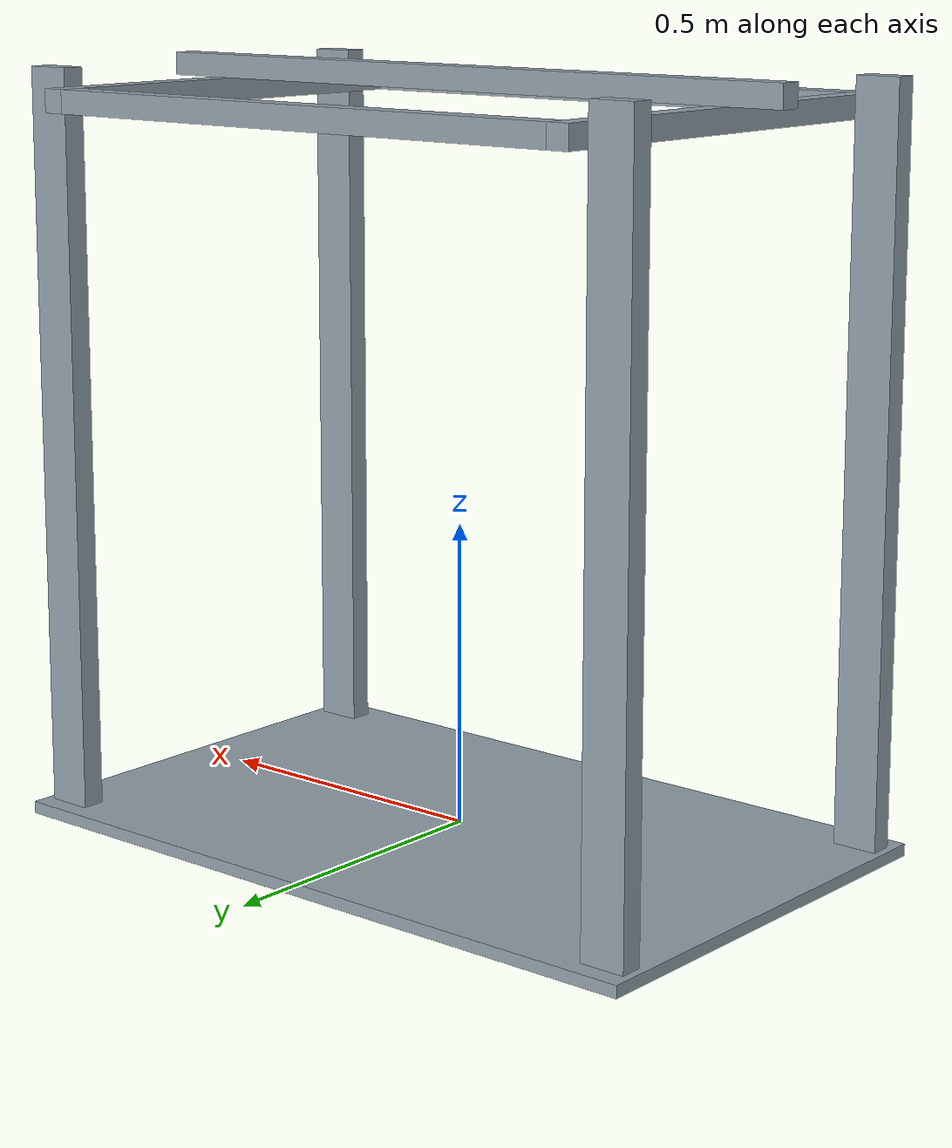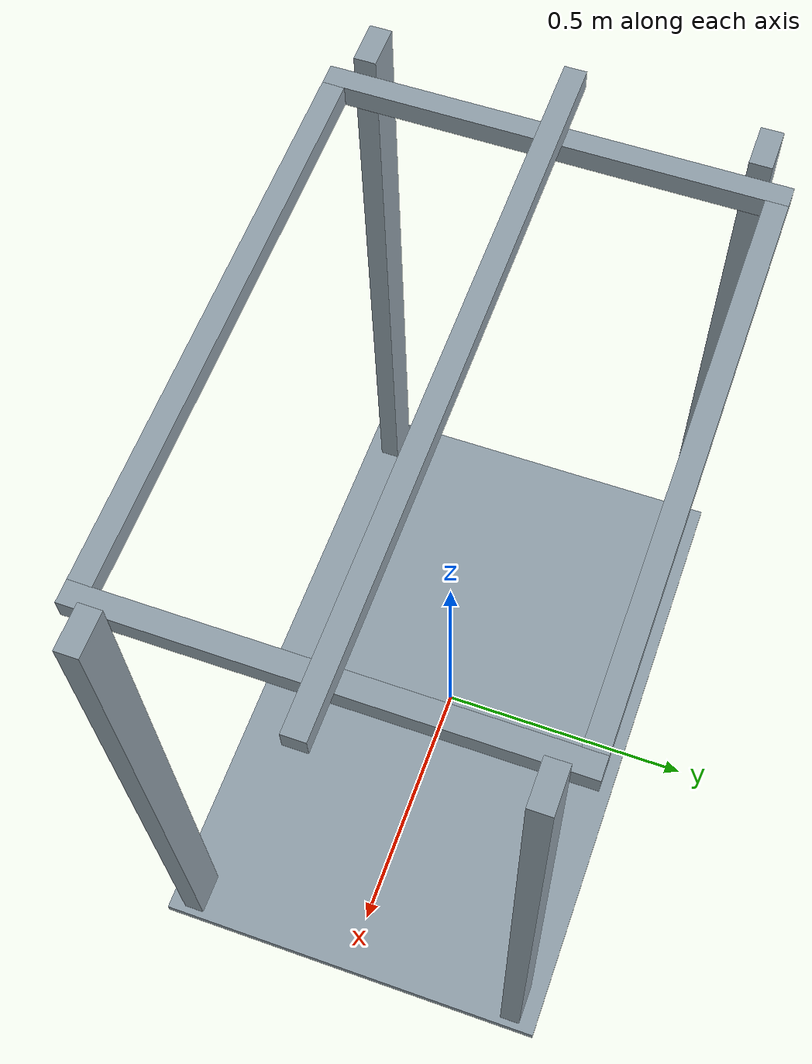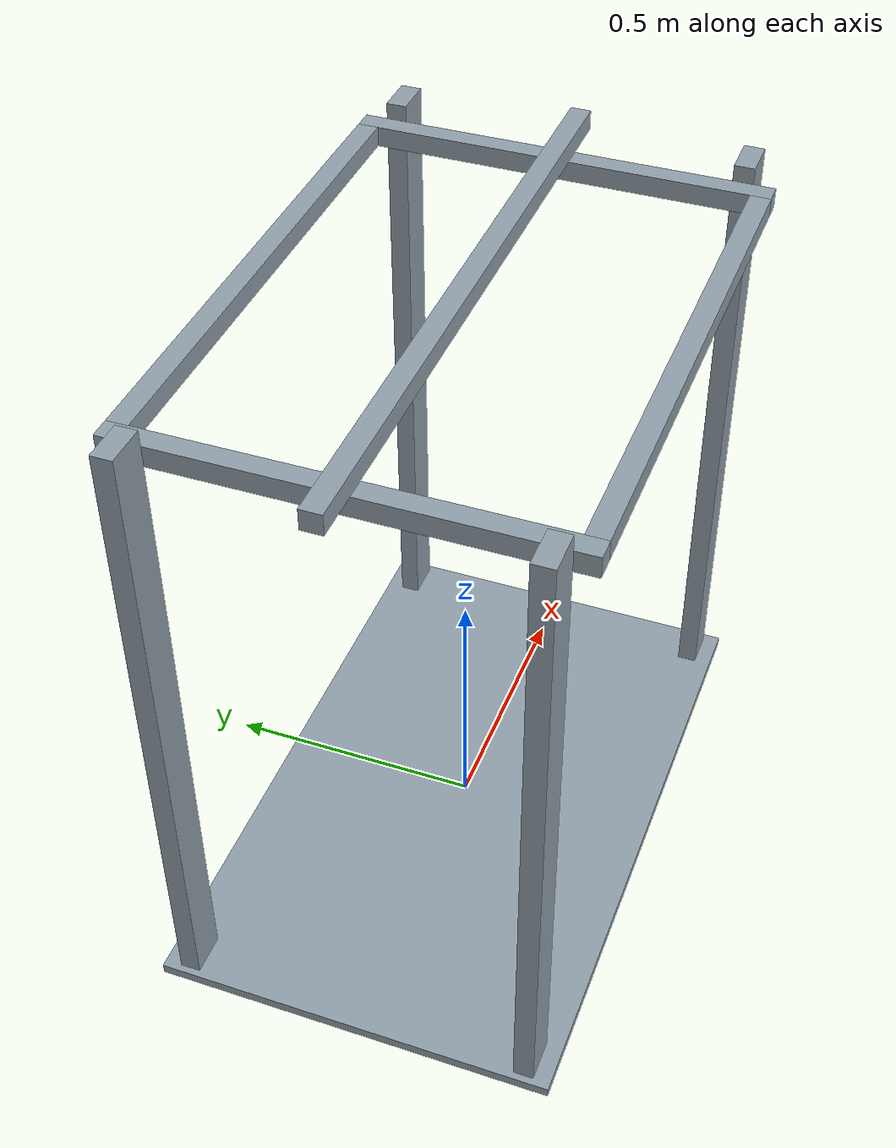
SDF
<?xml version="1.0"?>
<sdf version="1.7">
  <model name="amazon_table">
    <link name="amazon_table">
      <inertial>
        <mass>1</mass>
        <inertia>
          <ixx>1</ixx>
          <ixy>0</ixy>
          <ixz>0</ixz>
          <iyy>1</iyy>
          <iyz>0</iyz>
          <izz>1</izz>
        </inertia>
      </inertial>
      <visual name="tabletop">
        <pose>0 0 -0.01 0 0 0</pose>
        <geometry>
          <box>
            <size>1.220 0.762 0.02</size>
          </box>
        </geometry>
        <material>
          <diffuse>0.57 0.63 0.67 1.0</diffuse>
        </material>
      </visual>
      <visual name="upper_right_post">
        <pose>0.559 0.330 0.61 0 0 0</pose>
        <geometry>
          <box>
            <size>0.0762 0.0381 1.22</size>
          </box>
        </geometry>
        <material>
          <diffuse>0.57 0.63 0.67 1.0</diffuse>
        </material>
      </visual>
      <visual name="upper_left_post">
        <pose>0.559 -0.330 0.61 0 0 0</pose>
        <geometry>
          <box>
            <size>0.0762 0.0381 1.22</size>
          </box>
        </geometry>
        <material>
          <diffuse>0.57 0.63 0.67 1.0</diffuse>
        </material>
      </visual>
      <visual name="lower_right_post">
        <pose>-0.559 0.330  0.61 0 0 0</pose>
        <geometry>
          <box>
            <size>0.0762 0.0381 1.22</size>
          </box>
        </geometry>
        <material>
          <diffuse>0.57 0.63 0.67 1.0</diffuse>
        </material>
      </visual>
      <visual name="lower_left_post">
        <pose>-0.559 -0.330 0.61 0 0 0</pose>
        <geometry>
          <box>
            <size>0.0762 0.0381 1.22</size>
          </box>
        </geometry>
        <material>
          <diffuse>0.57 0.63 0.67 1.0</diffuse>
        </material>
      </visual>
      <visual name="top_left_bar">
        <pose>0 0.371 1.171 0 0 0</pose>
        <geometry>
          <box>
            <size>0.965 0.038 0.038</size>
          </box>
        </geometry>
        <material>
          <diffuse>0.57 0.63 0.67 1.0</diffuse>
        </material>
      </visual>
      <visual name="top_middle_bar">
        <pose>0 0 1.209 0 0 0</pose>
        <geometry>
          <box>
            <size>1.220 0.038 0.038</size>
          </box>
        </geometry>
        <material>
          <diffuse>0.57 0.63 0.67 1.0</diffuse>
        </material>
      </visual>
      <visual name="top_right_bar">
        <pose>0 -0.371 1.171 0 0 0</pose>
        <geometry>
          <box>
            <size>0.965 0.038 0.038</size>
          </box>
        </geometry>
        <material>
          <diffuse>0.57 0.63 0.67 1.0</diffuse>
        </material>
      </visual>
      <visual name="top_back_bar">
        <pose>-0.501 0 1.171 0 0 0</pose>
        <geometry>
          <box>
            <size>0.038 0.78 0.038</size>
          </box>
        </geometry>
        <material>
          <diffuse>0.57 0.63 0.67 1.0</diffuse>
        </material>
      </visual>
      <visual name="top_front_bar">
        <pose>0.501 0 1.171 0 0 0</pose>
        <geometry>
          <box>
            <size>0.038 0.78 0.038</size>
          </box>
        </geometry>
        <material>
          <diffuse>0.57 0.63 0.67 1.0</diffuse>
        </material>
      </visual>
      <collision name="tabletop">
        <pose>0 0 -0.01 0 0 0</pose>
        <geometry>
          <box>
            <size>1.220 0.762 0.02</size>
          </box>
        </geometry>
      </collision>
      <collision name="upper_right_post">
        <pose>0.559 0.330 0.61 0 0 0</pose>
        <geometry>
          <box>
            <size>0.076 0.038 1.219</size>
          </box>
        </geometry>
      </collision>
      <collision name="upper_left_post">
        <pose>0.559 -0.330 0.61 0 0 0</pose>
        <geometry>
          <box>
            <size>0.076 0.038 1.219</size>
          </box>
        </geometry>
      </collision>
      <collision name="lower_right_post">
        <pose>-0.559 0.330  0.61 0 0 0</pose>
        <geometry>
          <box>
            <size>0.076 0.038 1.219</size>
          </box>
        </geometry>
      </collision>
      <collision name="lower_left_post">
        <pose>-0.559 -0.330 0.61 0 0 0</pose>
        <geometry>
          <box>
            <size>0.076 0.038 1.219</size>
          </box>
        </geometry>
      </collision>
      <collision name="top_left_bar">
        <pose>0 0.371 1.171 0 0 0</pose>
        <geometry>
          <box>
            <size>0.964 0.037 0.037</size>
          </box>
        </geometry>
      </collision>
      <collision name="top_middle_bar">
        <pose>0 0 1.209 0 0 0</pose>
        <geometry>
          <box>
            <size>1.219 0.037 0.037</size>
          </box>
        </geometry>
      </collision>
      <collision name="top_right_bar">
        <pose>0 -0.371 1.171 0 0 0</pose>
        <geometry>
          <box>
            <size>0.964 0.037 0.037</size>
          </box>
        </geometry>
      </collision>
      <collision name="top_back_bar">
        <pose>-0.501 0 1.171 0 0 0</pose>
        <geometry>
          <box>
            <size>0.037 0.779 0.037</size>
          </box>
        </geometry>
      </collision>
      <collision name="top_front_bar">
        <pose>0.501 0 1.171 0 0 0</pose>
        <geometry>
          <box>
            <size>0.037 0.779 0.037</size>
          </box>
        </geometry>
      </collision>
    </link>
  </model>
</sdf>
